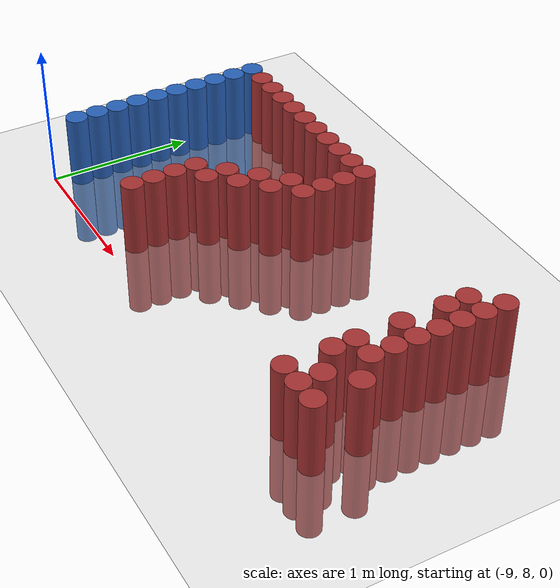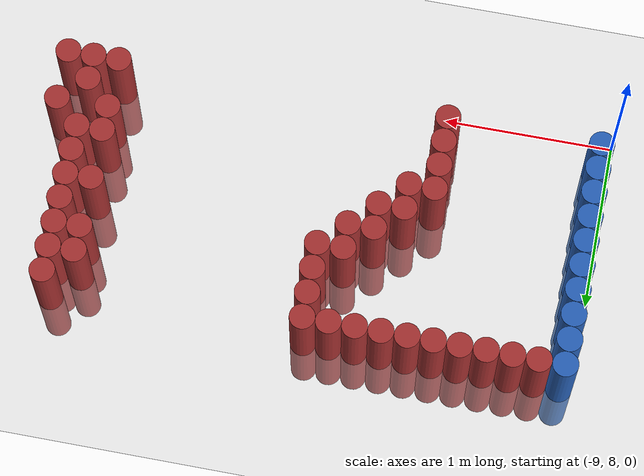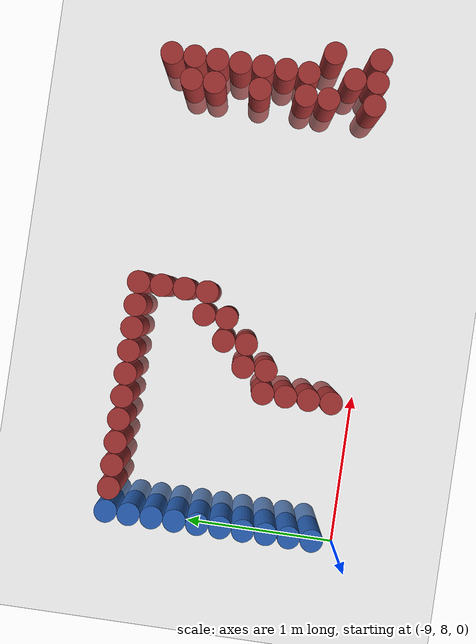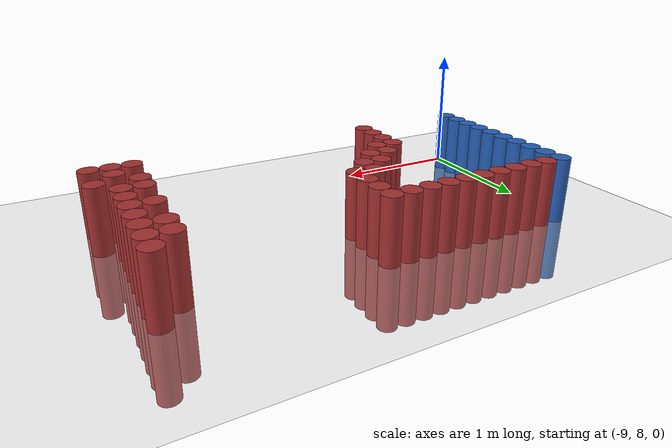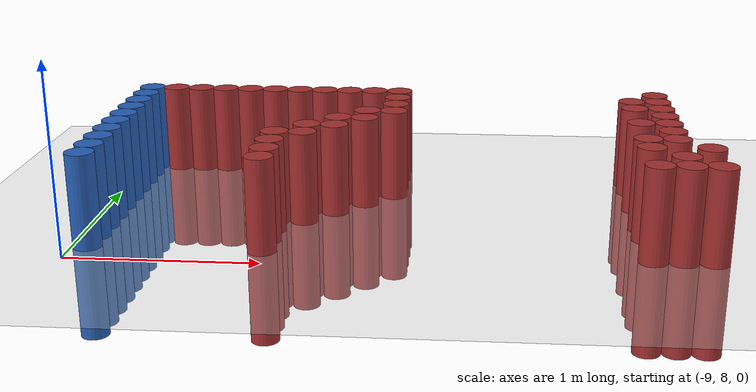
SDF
<sdf version="1.6">
 <world name="default">
  <model name="ground_plane">
   <static>1</static>
   <link name="link">
    <collision name="collision">
     <geometry><plane><normal>0 0 1</normal><size>100 100</size></plane></geometry>
     <surface><friction><ode><mu>100</mu><mu2>50</mu2></ode></friction></surface>
    </collision>
    <visual name="visual">
     <cast_shadows>0</cast_shadows>
     <geometry><plane><normal>0 0 1</normal><size>100 100</size></plane></geometry>
     <material>
      <script><uri>file://media/materials/scripts/gazebo.material</uri><name>Gazebo/Grey</name></script>
     </material>
    </visual>
   </link>
  </model>
  <model name="unit_cylinder_145">
   <static>1</static>
   <pose>-8.925000 8.175000 0.000000 0.000000 0.000000 0.000000</pose>
   <link name="link">
    <inertial>
     <mass>1</mass>
     <inertia><ixx>0.145833</ixx><ixy>0</ixy><ixz>0</ixz><iyy>0.145833</iyy><iyz>0</iyz><izz>0.125</izz></inertia>
    </inertial>
    <collision name="collision">
     <geometry><cylinder><radius>0.075000</radius><length>1</length></cylinder></geometry>
    </collision>
    <visual name="visual">
     <geometry><cylinder><radius>0.075000</radius><length>1</length></cylinder></geometry>
     <material>
      <ambient>0.152000 0.379000 0.720000 1</ambient>
      <diffuse>0.152000 0.379000 0.720000 1</diffuse>
     </material>
     <material>
      <script><name>Gazebo/Grey</name><uri>file://media/materials/scripts/gazebo.material</uri></script>
     </material>
    </visual>
   </link>
  </model>
  <model name="unit_cylinder_146">
   <static>1</static>
   <pose>-8.925000 8.325000 0.000000 0.000000 0.000000 0.000000</pose>
   <link name="link">
    <inertial>
     <mass>1</mass>
     <inertia><ixx>0.145833</ixx><ixy>0</ixy><ixz>0</ixz><iyy>0.145833</iyy><iyz>0</iyz><izz>0.125</izz></inertia>
    </inertial>
    <collision name="collision">
     <geometry><cylinder><radius>0.075000</radius><length>1</length></cylinder></geometry>
    </collision>
    <visual name="visual">
     <geometry><cylinder><radius>0.075000</radius><length>1</length></cylinder></geometry>
     <material>
      <ambient>0.152000 0.379000 0.720000 1</ambient>
      <diffuse>0.152000 0.379000 0.720000 1</diffuse>
     </material>
     <material>
      <script><name>Gazebo/Grey</name><uri>file://media/materials/scripts/gazebo.material</uri></script>
     </material>
    </visual>
   </link>
  </model>
  <model name="unit_cylinder_147">
   <static>1</static>
   <pose>-8.925000 8.475000 0.000000 0.000000 0.000000 0.000000</pose>
   <link name="link">
    <inertial>
     <mass>1</mass>
     <inertia><ixx>0.145833</ixx><ixy>0</ixy><ixz>0</ixz><iyy>0.145833</iyy><iyz>0</iyz><izz>0.125</izz></inertia>
    </inertial>
    <collision name="collision">
     <geometry><cylinder><radius>0.075000</radius><length>1</length></cylinder></geometry>
    </collision>
    <visual name="visual">
     <geometry><cylinder><radius>0.075000</radius><length>1</length></cylinder></geometry>
     <material>
      <ambient>0.152000 0.379000 0.720000 1</ambient>
      <diffuse>0.152000 0.379000 0.720000 1</diffuse>
     </material>
     <material>
      <script><name>Gazebo/Grey</name><uri>file://media/materials/scripts/gazebo.material</uri></script>
     </material>
    </visual>
   </link>
  </model>
  <model name="unit_cylinder_148">
   <static>1</static>
   <pose>-8.925000 8.625000 0.000000 0.000000 0.000000 0.000000</pose>
   <link name="link">
    <inertial>
     <mass>1</mass>
     <inertia><ixx>0.145833</ixx><ixy>0</ixy><ixz>0</ixz><iyy>0.145833</iyy><iyz>0</iyz><izz>0.125</izz></inertia>
    </inertial>
    <collision name="collision">
     <geometry><cylinder><radius>0.075000</radius><length>1</length></cylinder></geometry>
    </collision>
    <visual name="visual">
     <geometry><cylinder><radius>0.075000</radius><length>1</length></cylinder></geometry>
     <material>
      <ambient>0.152000 0.379000 0.720000 1</ambient>
      <diffuse>0.152000 0.379000 0.720000 1</diffuse>
     </material>
     <material>
      <script><name>Gazebo/Grey</name><uri>file://media/materials/scripts/gazebo.material</uri></script>
     </material>
    </visual>
   </link>
  </model>
  <model name="unit_cylinder_149">
   <static>1</static>
   <pose>-8.925000 8.775000 0.000000 0.000000 0.000000 0.000000</pose>
   <link name="link">
    <inertial>
     <mass>1</mass>
     <inertia><ixx>0.145833</ixx><ixy>0</ixy><ixz>0</ixz><iyy>0.145833</iyy><iyz>0</iyz><izz>0.125</izz></inertia>
    </inertial>
    <collision name="collision">
     <geometry><cylinder><radius>0.075000</radius><length>1</length></cylinder></geometry>
    </collision>
    <visual name="visual">
     <geometry><cylinder><radius>0.075000</radius><length>1</length></cylinder></geometry>
     <material>
      <ambient>0.152000 0.379000 0.720000 1</ambient>
      <diffuse>0.152000 0.379000 0.720000 1</diffuse>
     </material>
     <material>
      <script><name>Gazebo/Grey</name><uri>file://media/materials/scripts/gazebo.material</uri></script>
     </material>
    </visual>
   </link>
  </model>
  <model name="unit_cylinder_150">
   <static>1</static>
   <pose>-8.925000 8.925000 0.000000 0.000000 0.000000 0.000000</pose>
   <link name="link">
    <inertial>
     <mass>1</mass>
     <inertia><ixx>0.145833</ixx><ixy>0</ixy><ixz>0</ixz><iyy>0.145833</iyy><iyz>0</iyz><izz>0.125</izz></inertia>
    </inertial>
    <collision name="collision">
     <geometry><cylinder><radius>0.075000</radius><length>1</length></cylinder></geometry>
    </collision>
    <visual name="visual">
     <geometry><cylinder><radius>0.075000</radius><length>1</length></cylinder></geometry>
     <material>
      <ambient>0.152000 0.379000 0.720000 1</ambient>
      <diffuse>0.152000 0.379000 0.720000 1</diffuse>
     </material>
     <material>
      <script><name>Gazebo/Grey</name><uri>file://media/materials/scripts/gazebo.material</uri></script>
     </material>
    </visual>
   </link>
  </model>
  <model name="unit_cylinder_151">
   <static>1</static>
   <pose>-8.925000 9.075000 0.000000 0.000000 0.000000 0.000000</pose>
   <link name="link">
    <inertial>
     <mass>1</mass>
     <inertia><ixx>0.145833</ixx><ixy>0</ixy><ixz>0</ixz><iyy>0.145833</iyy><iyz>0</iyz><izz>0.125</izz></inertia>
    </inertial>
    <collision name="collision">
     <geometry><cylinder><radius>0.075000</radius><length>1</length></cylinder></geometry>
    </collision>
    <visual name="visual">
     <geometry><cylinder><radius>0.075000</radius><length>1</length></cylinder></geometry>
     <material>
      <ambient>0.152000 0.379000 0.720000 1</ambient>
      <diffuse>0.152000 0.379000 0.720000 1</diffuse>
     </material>
     <material>
      <script><name>Gazebo/Grey</name><uri>file://media/materials/scripts/gazebo.material</uri></script>
     </material>
    </visual>
   </link>
  </model>
  <model name="unit_cylinder_152">
   <static>1</static>
   <pose>-8.925000 9.225000 0.000000 0.000000 0.000000 0.000000</pose>
   <link name="link">
    <inertial>
     <mass>1</mass>
     <inertia><ixx>0.145833</ixx><ixy>0</ixy><ixz>0</ixz><iyy>0.145833</iyy><iyz>0</iyz><izz>0.125</izz></inertia>
    </inertial>
    <collision name="collision">
     <geometry><cylinder><radius>0.075000</radius><length>1</length></cylinder></geometry>
    </collision>
    <visual name="visual">
     <geometry><cylinder><radius>0.075000</radius><length>1</length></cylinder></geometry>
     <material>
      <ambient>0.152000 0.379000 0.720000 1</ambient>
      <diffuse>0.152000 0.379000 0.720000 1</diffuse>
     </material>
     <material>
      <script><name>Gazebo/Grey</name><uri>file://media/materials/scripts/gazebo.material</uri></script>
     </material>
    </visual>
   </link>
  </model>
  <model name="unit_cylinder_153">
   <static>1</static>
   <pose>-8.925000 9.375000 0.000000 0.000000 0.000000 0.000000</pose>
   <link name="link">
    <inertial>
     <mass>1</mass>
     <inertia><ixx>0.145833</ixx><ixy>0</ixy><ixz>0</ixz><iyy>0.145833</iyy><iyz>0</iyz><izz>0.125</izz></inertia>
    </inertial>
    <collision name="collision">
     <geometry><cylinder><radius>0.075000</radius><length>1</length></cylinder></geometry>
    </collision>
    <visual name="visual">
     <geometry><cylinder><radius>0.075000</radius><length>1</length></cylinder></geometry>
     <material>
      <ambient>0.152000 0.379000 0.720000 1</ambient>
      <diffuse>0.152000 0.379000 0.720000 1</diffuse>
     </material>
     <material>
      <script><name>Gazebo/Grey</name><uri>file://media/materials/scripts/gazebo.material</uri></script>
     </material>
    </visual>
   </link>
  </model>
  <model name="unit_cylinder_154">
   <static>1</static>
   <pose>-8.925000 9.525000 0.000000 0.000000 0.000000 0.000000</pose>
   <link name="link">
    <inertial>
     <mass>1</mass>
     <inertia><ixx>0.145833</ixx><ixy>0</ixy><ixz>0</ixz><iyy>0.145833</iyy><iyz>0</iyz><izz>0.125</izz></inertia>
    </inertial>
    <collision name="collision">
     <geometry><cylinder><radius>0.075000</radius><length>1</length></cylinder></geometry>
    </collision>
    <visual name="visual">
     <geometry><cylinder><radius>0.075000</radius><length>1</length></cylinder></geometry>
     <material>
      <ambient>0.152000 0.379000 0.720000 1</ambient>
      <diffuse>0.152000 0.379000 0.720000 1</diffuse>
     </material>
     <material>
      <script><name>Gazebo/Grey</name><uri>file://media/materials/scripts/gazebo.material</uri></script>
     </material>
    </visual>
   </link>
  </model>
  <model name="unit_cylinder_156">
   <static>1</static>
   <pose>-8.775000 9.525000 0.000000 0.000000 0.000000 0.000000</pose>
   <link name="link">
    <inertial>
     <mass>1</mass>
     <inertia><ixx>0.145833</ixx><ixy>0</ixy><ixz>0</ixz><iyy>0.145833</iyy><iyz>0</iyz><izz>0.125</izz></inertia>
    </inertial>
    <collision name="collision">
     <geometry><cylinder><radius>0.075000</radius><length>1</length></cylinder></geometry>
    </collision>
    <visual name="visual">
     <geometry><cylinder><radius>0.075000</radius><length>1</length></cylinder></geometry>
     <material>
      <ambient>0.648000 0.192000 0.192000 1</ambient>
      <diffuse>0.648000 0.192000 0.192000 1</diffuse>
     </material>
     <material>
      <script><name>Gazebo/Grey</name><uri>file://media/materials/scripts/gazebo.material</uri></script>
     </material>
    </visual>
   </link>
  </model>
  <model name="unit_cylinder_158">
   <static>1</static>
   <pose>-8.625000 9.525000 0.000000 0.000000 0.000000 0.000000</pose>
   <link name="link">
    <inertial>
     <mass>1</mass>
     <inertia><ixx>0.145833</ixx><ixy>0</ixy><ixz>0</ixz><iyy>0.145833</iyy><iyz>0</iyz><izz>0.125</izz></inertia>
    </inertial>
    <collision name="collision">
     <geometry><cylinder><radius>0.075000</radius><length>1</length></cylinder></geometry>
    </collision>
    <visual name="visual">
     <geometry><cylinder><radius>0.075000</radius><length>1</length></cylinder></geometry>
     <material>
      <ambient>0.648000 0.192000 0.192000 1</ambient>
      <diffuse>0.648000 0.192000 0.192000 1</diffuse>
     </material>
     <material>
      <script><name>Gazebo/Grey</name><uri>file://media/materials/scripts/gazebo.material</uri></script>
     </material>
    </visual>
   </link>
  </model>
  <model name="unit_cylinder_160">
   <static>1</static>
   <pose>-8.475000 9.525000 0.000000 0.000000 0.000000 0.000000</pose>
   <link name="link">
    <inertial>
     <mass>1</mass>
     <inertia><ixx>0.145833</ixx><ixy>0</ixy><ixz>0</ixz><iyy>0.145833</iyy><iyz>0</iyz><izz>0.125</izz></inertia>
    </inertial>
    <collision name="collision">
     <geometry><cylinder><radius>0.075000</radius><length>1</length></cylinder></geometry>
    </collision>
    <visual name="visual">
     <geometry><cylinder><radius>0.075000</radius><length>1</length></cylinder></geometry>
     <material>
      <ambient>0.648000 0.192000 0.192000 1</ambient>
      <diffuse>0.648000 0.192000 0.192000 1</diffuse>
     </material>
     <material>
      <script><name>Gazebo/Grey</name><uri>file://media/materials/scripts/gazebo.material</uri></script>
     </material>
    </visual>
   </link>
  </model>
  <model name="unit_cylinder_162">
   <static>1</static>
   <pose>-8.325000 9.525000 0.000000 0.000000 0.000000 0.000000</pose>
   <link name="link">
    <inertial>
     <mass>1</mass>
     <inertia><ixx>0.145833</ixx><ixy>0</ixy><ixz>0</ixz><iyy>0.145833</iyy><iyz>0</iyz><izz>0.125</izz></inertia>
    </inertial>
    <collision name="collision">
     <geometry><cylinder><radius>0.075000</radius><length>1</length></cylinder></geometry>
    </collision>
    <visual name="visual">
     <geometry><cylinder><radius>0.075000</radius><length>1</length></cylinder></geometry>
     <material>
      <ambient>0.648000 0.192000 0.192000 1</ambient>
      <diffuse>0.648000 0.192000 0.192000 1</diffuse>
     </material>
     <material>
      <script><name>Gazebo/Grey</name><uri>file://media/materials/scripts/gazebo.material</uri></script>
     </material>
    </visual>
   </link>
  </model>
  <model name="unit_cylinder_164">
   <static>1</static>
   <pose>-8.175000 9.525000 0.000000 0.000000 0.000000 0.000000</pose>
   <link name="link">
    <inertial>
     <mass>1</mass>
     <inertia><ixx>0.145833</ixx><ixy>0</ixy><ixz>0</ixz><iyy>0.145833</iyy><iyz>0</iyz><izz>0.125</izz></inertia>
    </inertial>
    <collision name="collision">
     <geometry><cylinder><radius>0.075000</radius><length>1</length></cylinder></geometry>
    </collision>
    <visual name="visual">
     <geometry><cylinder><radius>0.075000</radius><length>1</length></cylinder></geometry>
     <material>
      <ambient>0.648000 0.192000 0.192000 1</ambient>
      <diffuse>0.648000 0.192000 0.192000 1</diffuse>
     </material>
     <material>
      <script><name>Gazebo/Grey</name><uri>file://media/materials/scripts/gazebo.material</uri></script>
     </material>
    </visual>
   </link>
  </model>
  <model name="unit_cylinder_182">
   <static>1</static>
   <pose>-8.025000 8.175000 0.000000 0.000000 0.000000 0.000000</pose>
   <link name="link">
    <inertial>
     <mass>1</mass>
     <inertia><ixx>0.145833</ixx><ixy>0</ixy><ixz>0</ixz><iyy>0.145833</iyy><iyz>0</iyz><izz>0.125</izz></inertia>
    </inertial>
    <collision name="collision">
     <geometry><cylinder><radius>0.075000</radius><length>1</length></cylinder></geometry>
    </collision>
    <visual name="visual">
     <geometry><cylinder><radius>0.075000</radius><length>1</length></cylinder></geometry>
     <material>
      <ambient>0.648000 0.192000 0.192000 1</ambient>
      <diffuse>0.648000 0.192000 0.192000 1</diffuse>
     </material>
     <material>
      <script><name>Gazebo/Grey</name><uri>file://media/materials/scripts/gazebo.material</uri></script>
     </material>
    </visual>
   </link>
  </model>
  <model name="unit_cylinder_183">
   <static>1</static>
   <pose>-8.025000 8.325000 0.000000 0.000000 0.000000 0.000000</pose>
   <link name="link">
    <inertial>
     <mass>1</mass>
     <inertia><ixx>0.145833</ixx><ixy>0</ixy><ixz>0</ixz><iyy>0.145833</iyy><iyz>0</iyz><izz>0.125</izz></inertia>
    </inertial>
    <collision name="collision">
     <geometry><cylinder><radius>0.075000</radius><length>1</length></cylinder></geometry>
    </collision>
    <visual name="visual">
     <geometry><cylinder><radius>0.075000</radius><length>1</length></cylinder></geometry>
     <material>
      <ambient>0.648000 0.192000 0.192000 1</ambient>
      <diffuse>0.648000 0.192000 0.192000 1</diffuse>
     </material>
     <material>
      <script><name>Gazebo/Grey</name><uri>file://media/materials/scripts/gazebo.material</uri></script>
     </material>
    </visual>
   </link>
  </model>
  <model name="unit_cylinder_184">
   <static>1</static>
   <pose>-8.025000 8.475000 0.000000 0.000000 0.000000 0.000000</pose>
   <link name="link">
    <inertial>
     <mass>1</mass>
     <inertia><ixx>0.145833</ixx><ixy>0</ixy><ixz>0</ixz><iyy>0.145833</iyy><iyz>0</iyz><izz>0.125</izz></inertia>
    </inertial>
    <collision name="collision">
     <geometry><cylinder><radius>0.075000</radius><length>1</length></cylinder></geometry>
    </collision>
    <visual name="visual">
     <geometry><cylinder><radius>0.075000</radius><length>1</length></cylinder></geometry>
     <material>
      <ambient>0.648000 0.192000 0.192000 1</ambient>
      <diffuse>0.648000 0.192000 0.192000 1</diffuse>
     </material>
     <material>
      <script><name>Gazebo/Grey</name><uri>file://media/materials/scripts/gazebo.material</uri></script>
     </material>
    </visual>
   </link>
  </model>
  <model name="unit_cylinder_185">
   <static>1</static>
   <pose>-8.025000 8.625000 0.000000 0.000000 0.000000 0.000000</pose>
   <link name="link">
    <inertial>
     <mass>1</mass>
     <inertia><ixx>0.145833</ixx><ixy>0</ixy><ixz>0</ixz><iyy>0.145833</iyy><iyz>0</iyz><izz>0.125</izz></inertia>
    </inertial>
    <collision name="collision">
     <geometry><cylinder><radius>0.075000</radius><length>1</length></cylinder></geometry>
    </collision>
    <visual name="visual">
     <geometry><cylinder><radius>0.075000</radius><length>1</length></cylinder></geometry>
     <material>
      <ambient>0.648000 0.192000 0.192000 1</ambient>
      <diffuse>0.648000 0.192000 0.192000 1</diffuse>
     </material>
     <material>
      <script><name>Gazebo/Grey</name><uri>file://media/materials/scripts/gazebo.material</uri></script>
     </material>
    </visual>
   </link>
  </model>
  <model name="unit_cylinder_186">
   <static>1</static>
   <pose>-8.025000 9.525000 0.000000 0.000000 0.000000 0.000000</pose>
   <link name="link">
    <inertial>
     <mass>1</mass>
     <inertia><ixx>0.145833</ixx><ixy>0</ixy><ixz>0</ixz><iyy>0.145833</iyy><iyz>0</iyz><izz>0.125</izz></inertia>
    </inertial>
    <collision name="collision">
     <geometry><cylinder><radius>0.075000</radius><length>1</length></cylinder></geometry>
    </collision>
    <visual name="visual">
     <geometry><cylinder><radius>0.075000</radius><length>1</length></cylinder></geometry>
     <material>
      <ambient>0.648000 0.192000 0.192000 1</ambient>
      <diffuse>0.648000 0.192000 0.192000 1</diffuse>
     </material>
     <material>
      <script><name>Gazebo/Grey</name><uri>file://media/materials/scripts/gazebo.material</uri></script>
     </material>
    </visual>
   </link>
  </model>
  <model name="unit_cylinder_192">
   <static>1</static>
   <pose>-7.875000 8.625000 0.000000 0.000000 0.000000 0.000000</pose>
   <link name="link">
    <inertial>
     <mass>1</mass>
     <inertia><ixx>0.145833</ixx><ixy>0</ixy><ixz>0</ixz><iyy>0.145833</iyy><iyz>0</iyz><izz>0.125</izz></inertia>
    </inertial>
    <collision name="collision">
     <geometry><cylinder><radius>0.075000</radius><length>1</length></cylinder></geometry>
    </collision>
    <visual name="visual">
     <geometry><cylinder><radius>0.075000</radius><length>1</length></cylinder></geometry>
     <material>
      <ambient>0.648000 0.192000 0.192000 1</ambient>
      <diffuse>0.648000 0.192000 0.192000 1</diffuse>
     </material>
     <material>
      <script><name>Gazebo/Grey</name><uri>file://media/materials/scripts/gazebo.material</uri></script>
     </material>
    </visual>
   </link>
  </model>
  <model name="unit_cylinder_193">
   <static>1</static>
   <pose>-7.875000 8.775000 0.000000 0.000000 0.000000 0.000000</pose>
   <link name="link">
    <inertial>
     <mass>1</mass>
     <inertia><ixx>0.145833</ixx><ixy>0</ixy><ixz>0</ixz><iyy>0.145833</iyy><iyz>0</iyz><izz>0.125</izz></inertia>
    </inertial>
    <collision name="collision">
     <geometry><cylinder><radius>0.075000</radius><length>1</length></cylinder></geometry>
    </collision>
    <visual name="visual">
     <geometry><cylinder><radius>0.075000</radius><length>1</length></cylinder></geometry>
     <material>
      <ambient>0.648000 0.192000 0.192000 1</ambient>
      <diffuse>0.648000 0.192000 0.192000 1</diffuse>
     </material>
     <material>
      <script><name>Gazebo/Grey</name><uri>file://media/materials/scripts/gazebo.material</uri></script>
     </material>
    </visual>
   </link>
  </model>
  <model name="unit_cylinder_194">
   <static>1</static>
   <pose>-7.875000 9.525000 0.000000 0.000000 0.000000 0.000000</pose>
   <link name="link">
    <inertial>
     <mass>1</mass>
     <inertia><ixx>0.145833</ixx><ixy>0</ixy><ixz>0</ixz><iyy>0.145833</iyy><iyz>0</iyz><izz>0.125</izz></inertia>
    </inertial>
    <collision name="collision">
     <geometry><cylinder><radius>0.075000</radius><length>1</length></cylinder></geometry>
    </collision>
    <visual name="visual">
     <geometry><cylinder><radius>0.075000</radius><length>1</length></cylinder></geometry>
     <material>
      <ambient>0.648000 0.192000 0.192000 1</ambient>
      <diffuse>0.648000 0.192000 0.192000 1</diffuse>
     </material>
     <material>
      <script><name>Gazebo/Grey</name><uri>file://media/materials/scripts/gazebo.material</uri></script>
     </material>
    </visual>
   </link>
  </model>
  <model name="unit_cylinder_195">
   <static>1</static>
   <pose>-7.725000 8.775000 0.000000 0.000000 0.000000 0.000000</pose>
   <link name="link">
    <inertial>
     <mass>1</mass>
     <inertia><ixx>0.145833</ixx><ixy>0</ixy><ixz>0</ixz><iyy>0.145833</iyy><iyz>0</iyz><izz>0.125</izz></inertia>
    </inertial>
    <collision name="collision">
     <geometry><cylinder><radius>0.075000</radius><length>1</length></cylinder></geometry>
    </collision>
    <visual name="visual">
     <geometry><cylinder><radius>0.075000</radius><length>1</length></cylinder></geometry>
     <material>
      <ambient>0.648000 0.192000 0.192000 1</ambient>
      <diffuse>0.648000 0.192000 0.192000 1</diffuse>
     </material>
     <material>
      <script><name>Gazebo/Grey</name><uri>file://media/materials/scripts/gazebo.material</uri></script>
     </material>
    </visual>
   </link>
  </model>
  <model name="unit_cylinder_196">
   <static>1</static>
   <pose>-7.725000 8.925000 0.000000 0.000000 0.000000 0.000000</pose>
   <link name="link">
    <inertial>
     <mass>1</mass>
     <inertia><ixx>0.145833</ixx><ixy>0</ixy><ixz>0</ixz><iyy>0.145833</iyy><iyz>0</iyz><izz>0.125</izz></inertia>
    </inertial>
    <collision name="collision">
     <geometry><cylinder><radius>0.075000</radius><length>1</length></cylinder></geometry>
    </collision>
    <visual name="visual">
     <geometry><cylinder><radius>0.075000</radius><length>1</length></cylinder></geometry>
     <material>
      <ambient>0.648000 0.192000 0.192000 1</ambient>
      <diffuse>0.648000 0.192000 0.192000 1</diffuse>
     </material>
     <material>
      <script><name>Gazebo/Grey</name><uri>file://media/materials/scripts/gazebo.material</uri></script>
     </material>
    </visual>
   </link>
  </model>
  <model name="unit_cylinder_197">
   <static>1</static>
   <pose>-7.725000 9.525000 0.000000 0.000000 0.000000 0.000000</pose>
   <link name="link">
    <inertial>
     <mass>1</mass>
     <inertia><ixx>0.145833</ixx><ixy>0</ixy><ixz>0</ixz><iyy>0.145833</iyy><iyz>0</iyz><izz>0.125</izz></inertia>
    </inertial>
    <collision name="collision">
     <geometry><cylinder><radius>0.075000</radius><length>1</length></cylinder></geometry>
    </collision>
    <visual name="visual">
     <geometry><cylinder><radius>0.075000</radius><length>1</length></cylinder></geometry>
     <material>
      <ambient>0.648000 0.192000 0.192000 1</ambient>
      <diffuse>0.648000 0.192000 0.192000 1</diffuse>
     </material>
     <material>
      <script><name>Gazebo/Grey</name><uri>file://media/materials/scripts/gazebo.material</uri></script>
     </material>
    </visual>
   </link>
  </model>
  <model name="unit_cylinder_198">
   <static>1</static>
   <pose>-7.575000 8.925000 0.000000 0.000000 0.000000 0.000000</pose>
   <link name="link">
    <inertial>
     <mass>1</mass>
     <inertia><ixx>0.145833</ixx><ixy>0</ixy><ixz>0</ixz><iyy>0.145833</iyy><iyz>0</iyz><izz>0.125</izz></inertia>
    </inertial>
    <collision name="collision">
     <geometry><cylinder><radius>0.075000</radius><length>1</length></cylinder></geometry>
    </collision>
    <visual name="visual">
     <geometry><cylinder><radius>0.075000</radius><length>1</length></cylinder></geometry>
     <material>
      <ambient>0.648000 0.192000 0.192000 1</ambient>
      <diffuse>0.648000 0.192000 0.192000 1</diffuse>
     </material>
     <material>
      <script><name>Gazebo/Grey</name><uri>file://media/materials/scripts/gazebo.material</uri></script>
     </material>
    </visual>
   </link>
  </model>
  <model name="unit_cylinder_199">
   <static>1</static>
   <pose>-7.575000 9.075000 0.000000 0.000000 0.000000 0.000000</pose>
   <link name="link">
    <inertial>
     <mass>1</mass>
     <inertia><ixx>0.145833</ixx><ixy>0</ixy><ixz>0</ixz><iyy>0.145833</iyy><iyz>0</iyz><izz>0.125</izz></inertia>
    </inertial>
    <collision name="collision">
     <geometry><cylinder><radius>0.075000</radius><length>1</length></cylinder></geometry>
    </collision>
    <visual name="visual">
     <geometry><cylinder><radius>0.075000</radius><length>1</length></cylinder></geometry>
     <material>
      <ambient>0.648000 0.192000 0.192000 1</ambient>
      <diffuse>0.648000 0.192000 0.192000 1</diffuse>
     </material>
     <material>
      <script><name>Gazebo/Grey</name><uri>file://media/materials/scripts/gazebo.material</uri></script>
     </material>
    </visual>
   </link>
  </model>
  <model name="unit_cylinder_200">
   <static>1</static>
   <pose>-7.575000 9.525000 0.000000 0.000000 0.000000 0.000000</pose>
   <link name="link">
    <inertial>
     <mass>1</mass>
     <inertia><ixx>0.145833</ixx><ixy>0</ixy><ixz>0</ixz><iyy>0.145833</iyy><iyz>0</iyz><izz>0.125</izz></inertia>
    </inertial>
    <collision name="collision">
     <geometry><cylinder><radius>0.075000</radius><length>1</length></cylinder></geometry>
    </collision>
    <visual name="visual">
     <geometry><cylinder><radius>0.075000</radius><length>1</length></cylinder></geometry>
     <material>
      <ambient>0.648000 0.192000 0.192000 1</ambient>
      <diffuse>0.648000 0.192000 0.192000 1</diffuse>
     </material>
     <material>
      <script><name>Gazebo/Grey</name><uri>file://media/materials/scripts/gazebo.material</uri></script>
     </material>
    </visual>
   </link>
  </model>
  <model name="unit_cylinder_201">
   <static>1</static>
   <pose>-7.425000 9.075000 0.000000 0.000000 0.000000 0.000000</pose>
   <link name="link">
    <inertial>
     <mass>1</mass>
     <inertia><ixx>0.145833</ixx><ixy>0</ixy><ixz>0</ixz><iyy>0.145833</iyy><iyz>0</iyz><izz>0.125</izz></inertia>
    </inertial>
    <collision name="collision">
     <geometry><cylinder><radius>0.075000</radius><length>1</length></cylinder></geometry>
    </collision>
    <visual name="visual">
     <geometry><cylinder><radius>0.075000</radius><length>1</length></cylinder></geometry>
     <material>
      <ambient>0.648000 0.192000 0.192000 1</ambient>
      <diffuse>0.648000 0.192000 0.192000 1</diffuse>
     </material>
     <material>
      <script><name>Gazebo/Grey</name><uri>file://media/materials/scripts/gazebo.material</uri></script>
     </material>
    </visual>
   </link>
  </model>
  <model name="unit_cylinder_202">
   <static>1</static>
   <pose>-7.425000 9.225000 0.000000 0.000000 0.000000 0.000000</pose>
   <link name="link">
    <inertial>
     <mass>1</mass>
     <inertia><ixx>0.145833</ixx><ixy>0</ixy><ixz>0</ixz><iyy>0.145833</iyy><iyz>0</iyz><izz>0.125</izz></inertia>
    </inertial>
    <collision name="collision">
     <geometry><cylinder><radius>0.075000</radius><length>1</length></cylinder></geometry>
    </collision>
    <visual name="visual">
     <geometry><cylinder><radius>0.075000</radius><length>1</length></cylinder></geometry>
     <material>
      <ambient>0.648000 0.192000 0.192000 1</ambient>
      <diffuse>0.648000 0.192000 0.192000 1</diffuse>
     </material>
     <material>
      <script><name>Gazebo/Grey</name><uri>file://media/materials/scripts/gazebo.material</uri></script>
     </material>
    </visual>
   </link>
  </model>
  <model name="unit_cylinder_203">
   <static>1</static>
   <pose>-7.425000 9.375000 0.000000 0.000000 0.000000 0.000000</pose>
   <link name="link">
    <inertial>
     <mass>1</mass>
     <inertia><ixx>0.145833</ixx><ixy>0</ixy><ixz>0</ixz><iyy>0.145833</iyy><iyz>0</iyz><izz>0.125</izz></inertia>
    </inertial>
    <collision name="collision">
     <geometry><cylinder><radius>0.075000</radius><length>1</length></cylinder></geometry>
    </collision>
    <visual name="visual">
     <geometry><cylinder><radius>0.075000</radius><length>1</length></cylinder></geometry>
     <material>
      <ambient>0.648000 0.192000 0.192000 1</ambient>
      <diffuse>0.648000 0.192000 0.192000 1</diffuse>
     </material>
     <material>
      <script><name>Gazebo/Grey</name><uri>file://media/materials/scripts/gazebo.material</uri></script>
     </material>
    </visual>
   </link>
  </model>
  <model name="unit_cylinder_204">
   <static>1</static>
   <pose>-7.425000 9.525000 0.000000 0.000000 0.000000 0.000000</pose>
   <link name="link">
    <inertial>
     <mass>1</mass>
     <inertia><ixx>0.145833</ixx><ixy>0</ixy><ixz>0</ixz><iyy>0.145833</iyy><iyz>0</iyz><izz>0.125</izz></inertia>
    </inertial>
    <collision name="collision">
     <geometry><cylinder><radius>0.075000</radius><length>1</length></cylinder></geometry>
    </collision>
    <visual name="visual">
     <geometry><cylinder><radius>0.075000</radius><length>1</length></cylinder></geometry>
     <material>
      <ambient>0.648000 0.192000 0.192000 1</ambient>
      <diffuse>0.648000 0.192000 0.192000 1</diffuse>
     </material>
     <material>
      <script><name>Gazebo/Grey</name><uri>file://media/materials/scripts/gazebo.material</uri></script>
     </material>
    </visual>
   </link>
  </model>
  <model name="unit_cylinder_232">
   <static>1</static>
   <pose>-6.075000 8.175000 0.000000 0.000000 0.000000 0.000000</pose>
   <link name="link">
    <inertial>
     <mass>1</mass>
     <inertia><ixx>0.145833</ixx><ixy>0</ixy><ixz>0</ixz><iyy>0.145833</iyy><iyz>0</iyz><izz>0.125</izz></inertia>
    </inertial>
    <collision name="collision">
     <geometry><cylinder><radius>0.075000</radius><length>1</length></cylinder></geometry>
    </collision>
    <visual name="visual">
     <geometry><cylinder><radius>0.075000</radius><length>1</length></cylinder></geometry>
     <material>
      <ambient>0.648000 0.192000 0.192000 1</ambient>
      <diffuse>0.648000 0.192000 0.192000 1</diffuse>
     </material>
     <material>
      <script><name>Gazebo/Grey</name><uri>file://media/materials/scripts/gazebo.material</uri></script>
     </material>
    </visual>
   </link>
  </model>
  <model name="unit_cylinder_233">
   <static>1</static>
   <pose>-6.075000 8.475000 0.000000 0.000000 0.000000 0.000000</pose>
   <link name="link">
    <inertial>
     <mass>1</mass>
     <inertia><ixx>0.145833</ixx><ixy>0</ixy><ixz>0</ixz><iyy>0.145833</iyy><iyz>0</iyz><izz>0.125</izz></inertia>
    </inertial>
    <collision name="collision">
     <geometry><cylinder><radius>0.075000</radius><length>1</length></cylinder></geometry>
    </collision>
    <visual name="visual">
     <geometry><cylinder><radius>0.075000</radius><length>1</length></cylinder></geometry>
     <material>
      <ambient>0.648000 0.192000 0.192000 1</ambient>
      <diffuse>0.648000 0.192000 0.192000 1</diffuse>
     </material>
     <material>
      <script><name>Gazebo/Grey</name><uri>file://media/materials/scripts/gazebo.material</uri></script>
     </material>
    </visual>
   </link>
  </model>
  <model name="unit_cylinder_234">
   <static>1</static>
   <pose>-6.075000 8.625000 0.000000 0.000000 0.000000 0.000000</pose>
   <link name="link">
    <inertial>
     <mass>1</mass>
     <inertia><ixx>0.145833</ixx><ixy>0</ixy><ixz>0</ixz><iyy>0.145833</iyy><iyz>0</iyz><izz>0.125</izz></inertia>
    </inertial>
    <collision name="collision">
     <geometry><cylinder><radius>0.075000</radius><length>1</length></cylinder></geometry>
    </collision>
    <visual name="visual">
     <geometry><cylinder><radius>0.075000</radius><length>1</length></cylinder></geometry>
     <material>
      <ambient>0.648000 0.192000 0.192000 1</ambient>
      <diffuse>0.648000 0.192000 0.192000 1</diffuse>
     </material>
     <material>
      <script><name>Gazebo/Grey</name><uri>file://media/materials/scripts/gazebo.material</uri></script>
     </material>
    </visual>
   </link>
  </model>
  <model name="unit_cylinder_235">
   <static>1</static>
   <pose>-6.075000 8.925000 0.000000 0.000000 0.000000 0.000000</pose>
   <link name="link">
    <inertial>
     <mass>1</mass>
     <inertia><ixx>0.145833</ixx><ixy>0</ixy><ixz>0</ixz><iyy>0.145833</iyy><iyz>0</iyz><izz>0.125</izz></inertia>
    </inertial>
    <collision name="collision">
     <geometry><cylinder><radius>0.075000</radius><length>1</length></cylinder></geometry>
    </collision>
    <visual name="visual">
     <geometry><cylinder><radius>0.075000</radius><length>1</length></cylinder></geometry>
     <material>
      <ambient>0.648000 0.192000 0.192000 1</ambient>
      <diffuse>0.648000 0.192000 0.192000 1</diffuse>
     </material>
     <material>
      <script><name>Gazebo/Grey</name><uri>file://media/materials/scripts/gazebo.material</uri></script>
     </material>
    </visual>
   </link>
  </model>
  <model name="unit_cylinder_236">
   <static>1</static>
   <pose>-6.075000 9.225000 0.000000 0.000000 0.000000 0.000000</pose>
   <link name="link">
    <inertial>
     <mass>1</mass>
     <inertia><ixx>0.145833</ixx><ixy>0</ixy><ixz>0</ixz><iyy>0.145833</iyy><iyz>0</iyz><izz>0.125</izz></inertia>
    </inertial>
    <collision name="collision">
     <geometry><cylinder><radius>0.075000</radius><length>1</length></cylinder></geometry>
    </collision>
    <visual name="visual">
     <geometry><cylinder><radius>0.075000</radius><length>1</length></cylinder></geometry>
     <material>
      <ambient>0.648000 0.192000 0.192000 1</ambient>
      <diffuse>0.648000 0.192000 0.192000 1</diffuse>
     </material>
     <material>
      <script><name>Gazebo/Grey</name><uri>file://media/materials/scripts/gazebo.material</uri></script>
     </material>
    </visual>
   </link>
  </model>
  <model name="unit_cylinder_237">
   <static>1</static>
   <pose>-6.075000 9.375000 0.000000 0.000000 0.000000 0.000000</pose>
   <link name="link">
    <inertial>
     <mass>1</mass>
     <inertia><ixx>0.145833</ixx><ixy>0</ixy><ixz>0</ixz><iyy>0.145833</iyy><iyz>0</iyz><izz>0.125</izz></inertia>
    </inertial>
    <collision name="collision">
     <geometry><cylinder><radius>0.075000</radius><length>1</length></cylinder></geometry>
    </collision>
    <visual name="visual">
     <geometry><cylinder><radius>0.075000</radius><length>1</length></cylinder></geometry>
     <material>
      <ambient>0.648000 0.192000 0.192000 1</ambient>
      <diffuse>0.648000 0.192000 0.192000 1</diffuse>
     </material>
     <material>
      <script><name>Gazebo/Grey</name><uri>file://media/materials/scripts/gazebo.material</uri></script>
     </material>
    </visual>
   </link>
  </model>
  <model name="unit_cylinder_243">
   <static>1</static>
   <pose>-5.925000 8.175000 0.000000 0.000000 0.000000 0.000000</pose>
   <link name="link">
    <inertial>
     <mass>1</mass>
     <inertia><ixx>0.145833</ixx><ixy>0</ixy><ixz>0</ixz><iyy>0.145833</iyy><iyz>0</iyz><izz>0.125</izz></inertia>
    </inertial>
    <collision name="collision">
     <geometry><cylinder><radius>0.075000</radius><length>1</length></cylinder></geometry>
    </collision>
    <visual name="visual">
     <geometry><cylinder><radius>0.075000</radius><length>1</length></cylinder></geometry>
     <material>
      <ambient>0.648000 0.192000 0.192000 1</ambient>
      <diffuse>0.648000 0.192000 0.192000 1</diffuse>
     </material>
     <material>
      <script><name>Gazebo/Grey</name><uri>file://media/materials/scripts/gazebo.material</uri></script>
     </material>
    </visual>
   </link>
  </model>
  <model name="unit_cylinder_244">
   <static>1</static>
   <pose>-5.925000 8.325000 0.000000 0.000000 0.000000 0.000000</pose>
   <link name="link">
    <inertial>
     <mass>1</mass>
     <inertia><ixx>0.145833</ixx><ixy>0</ixy><ixz>0</ixz><iyy>0.145833</iyy><iyz>0</iyz><izz>0.125</izz></inertia>
    </inertial>
    <collision name="collision">
     <geometry><cylinder><radius>0.075000</radius><length>1</length></cylinder></geometry>
    </collision>
    <visual name="visual">
     <geometry><cylinder><radius>0.075000</radius><length>1</length></cylinder></geometry>
     <material>
      <ambient>0.648000 0.192000 0.192000 1</ambient>
      <diffuse>0.648000 0.192000 0.192000 1</diffuse>
     </material>
     <material>
      <script><name>Gazebo/Grey</name><uri>file://media/materials/scripts/gazebo.material</uri></script>
     </material>
    </visual>
   </link>
  </model>
  <model name="unit_cylinder_245">
   <static>1</static>
   <pose>-5.925000 8.625000 0.000000 0.000000 0.000000 0.000000</pose>
   <link name="link">
    <inertial>
     <mass>1</mass>
     <inertia><ixx>0.145833</ixx><ixy>0</ixy><ixz>0</ixz><iyy>0.145833</iyy><iyz>0</iyz><izz>0.125</izz></inertia>
    </inertial>
    <collision name="collision">
     <geometry><cylinder><radius>0.075000</radius><length>1</length></cylinder></geometry>
    </collision>
    <visual name="visual">
     <geometry><cylinder><radius>0.075000</radius><length>1</length></cylinder></geometry>
     <material>
      <ambient>0.648000 0.192000 0.192000 1</ambient>
      <diffuse>0.648000 0.192000 0.192000 1</diffuse>
     </material>
     <material>
      <script><name>Gazebo/Grey</name><uri>file://media/materials/scripts/gazebo.material</uri></script>
     </material>
    </visual>
   </link>
  </model>
  <model name="unit_cylinder_246">
   <static>1</static>
   <pose>-5.925000 8.775000 0.000000 0.000000 0.000000 0.000000</pose>
   <link name="link">
    <inertial>
     <mass>1</mass>
     <inertia><ixx>0.145833</ixx><ixy>0</ixy><ixz>0</ixz><iyy>0.145833</iyy><iyz>0</iyz><izz>0.125</izz></inertia>
    </inertial>
    <collision name="collision">
     <geometry><cylinder><radius>0.075000</radius><length>1</length></cylinder></geometry>
    </collision>
    <visual name="visual">
     <geometry><cylinder><radius>0.075000</radius><length>1</length></cylinder></geometry>
     <material>
      <ambient>0.648000 0.192000 0.192000 1</ambient>
      <diffuse>0.648000 0.192000 0.192000 1</diffuse>
     </material>
     <material>
      <script><name>Gazebo/Grey</name><uri>file://media/materials/scripts/gazebo.material</uri></script>
     </material>
    </visual>
   </link>
  </model>
  <model name="unit_cylinder_247">
   <static>1</static>
   <pose>-5.925000 8.925000 0.000000 0.000000 0.000000 0.000000</pose>
   <link name="link">
    <inertial>
     <mass>1</mass>
     <inertia><ixx>0.145833</ixx><ixy>0</ixy><ixz>0</ixz><iyy>0.145833</iyy><iyz>0</iyz><izz>0.125</izz></inertia>
    </inertial>
    <collision name="collision">
     <geometry><cylinder><radius>0.075000</radius><length>1</length></cylinder></geometry>
    </collision>
    <visual name="visual">
     <geometry><cylinder><radius>0.075000</radius><length>1</length></cylinder></geometry>
     <material>
      <ambient>0.648000 0.192000 0.192000 1</ambient>
      <diffuse>0.648000 0.192000 0.192000 1</diffuse>
     </material>
     <material>
      <script><name>Gazebo/Grey</name><uri>file://media/materials/scripts/gazebo.material</uri></script>
     </material>
    </visual>
   </link>
  </model>
  <model name="unit_cylinder_248">
   <static>1</static>
   <pose>-5.925000 9.075000 0.000000 0.000000 0.000000 0.000000</pose>
   <link name="link">
    <inertial>
     <mass>1</mass>
     <inertia><ixx>0.145833</ixx><ixy>0</ixy><ixz>0</ixz><iyy>0.145833</iyy><iyz>0</iyz><izz>0.125</izz></inertia>
    </inertial>
    <collision name="collision">
     <geometry><cylinder><radius>0.075000</radius><length>1</length></cylinder></geometry>
    </collision>
    <visual name="visual">
     <geometry><cylinder><radius>0.075000</radius><length>1</length></cylinder></geometry>
     <material>
      <ambient>0.648000 0.192000 0.192000 1</ambient>
      <diffuse>0.648000 0.192000 0.192000 1</diffuse>
     </material>
     <material>
      <script><name>Gazebo/Grey</name><uri>file://media/materials/scripts/gazebo.material</uri></script>
     </material>
    </visual>
   </link>
  </model>
  <model name="unit_cylinder_249">
   <static>1</static>
   <pose>-5.925000 9.225000 0.000000 0.000000 0.000000 0.000000</pose>
   <link name="link">
    <inertial>
     <mass>1</mass>
     <inertia><ixx>0.145833</ixx><ixy>0</ixy><ixz>0</ixz><iyy>0.145833</iyy><iyz>0</iyz><izz>0.125</izz></inertia>
    </inertial>
    <collision name="collision">
     <geometry><cylinder><radius>0.075000</radius><length>1</length></cylinder></geometry>
    </collision>
    <visual name="visual">
     <geometry><cylinder><radius>0.075000</radius><length>1</length></cylinder></geometry>
     <material>
      <ambient>0.648000 0.192000 0.192000 1</ambient>
      <diffuse>0.648000 0.192000 0.192000 1</diffuse>
     </material>
     <material>
      <script><name>Gazebo/Grey</name><uri>file://media/materials/scripts/gazebo.material</uri></script>
     </material>
    </visual>
   </link>
  </model>
  <model name="unit_cylinder_250">
   <static>1</static>
   <pose>-5.925000 9.375000 0.000000 0.000000 0.000000 0.000000</pose>
   <link name="link">
    <inertial>
     <mass>1</mass>
     <inertia><ixx>0.145833</ixx><ixy>0</ixy><ixz>0</ixz><iyy>0.145833</iyy><iyz>0</iyz><izz>0.125</izz></inertia>
    </inertial>
    <collision name="collision">
     <geometry><cylinder><radius>0.075000</radius><length>1</length></cylinder></geometry>
    </collision>
    <visual name="visual">
     <geometry><cylinder><radius>0.075000</radius><length>1</length></cylinder></geometry>
     <material>
      <ambient>0.648000 0.192000 0.192000 1</ambient>
      <diffuse>0.648000 0.192000 0.192000 1</diffuse>
     </material>
     <material>
      <script><name>Gazebo/Grey</name><uri>file://media/materials/scripts/gazebo.material</uri></script>
     </material>
    </visual>
   </link>
  </model>
  <model name="unit_cylinder_251">
   <static>1</static>
   <pose>-5.925000 9.525000 0.000000 0.000000 0.000000 0.000000</pose>
   <link name="link">
    <inertial>
     <mass>1</mass>
     <inertia><ixx>0.145833</ixx><ixy>0</ixy><ixz>0</ixz><iyy>0.145833</iyy><iyz>0</iyz><izz>0.125</izz></inertia>
    </inertial>
    <collision name="collision">
     <geometry><cylinder><radius>0.075000</radius><length>1</length></cylinder></geometry>
    </collision>
    <visual name="visual">
     <geometry><cylinder><radius>0.075000</radius><length>1</length></cylinder></geometry>
     <material>
      <ambient>0.648000 0.192000 0.192000 1</ambient>
      <diffuse>0.648000 0.192000 0.192000 1</diffuse>
     </material>
     <material>
      <script><name>Gazebo/Grey</name><uri>file://media/materials/scripts/gazebo.material</uri></script>
     </material>
    </visual>
   </link>
  </model>
  <model name="unit_cylinder_255">
   <static>1</static>
   <pose>-5.775000 8.175000 0.000000 0.000000 0.000000 0.000000</pose>
   <link name="link">
    <inertial>
     <mass>1</mass>
     <inertia><ixx>0.145833</ixx><ixy>0</ixy><ixz>0</ixz><iyy>0.145833</iyy><iyz>0</iyz><izz>0.125</izz></inertia>
    </inertial>
    <collision name="collision">
     <geometry><cylinder><radius>0.075000</radius><length>1</length></cylinder></geometry>
    </collision>
    <visual name="visual">
     <geometry><cylinder><radius>0.075000</radius><length>1</length></cylinder></geometry>
     <material>
      <ambient>0.648000 0.192000 0.192000 1</ambient>
      <diffuse>0.648000 0.192000 0.192000 1</diffuse>
     </material>
     <material>
      <script><name>Gazebo/Grey</name><uri>file://media/materials/scripts/gazebo.material</uri></script>
     </material>
    </visual>
   </link>
  </model>
  <model name="unit_cylinder_256">
   <static>1</static>
   <pose>-5.775000 8.475000 0.000000 0.000000 0.000000 0.000000</pose>
   <link name="link">
    <inertial>
     <mass>1</mass>
     <inertia><ixx>0.145833</ixx><ixy>0</ixy><ixz>0</ixz><iyy>0.145833</iyy><iyz>0</iyz><izz>0.125</izz></inertia>
    </inertial>
    <collision name="collision">
     <geometry><cylinder><radius>0.075000</radius><length>1</length></cylinder></geometry>
    </collision>
    <visual name="visual">
     <geometry><cylinder><radius>0.075000</radius><length>1</length></cylinder></geometry>
     <material>
      <ambient>0.648000 0.192000 0.192000 1</ambient>
      <diffuse>0.648000 0.192000 0.192000 1</diffuse>
     </material>
     <material>
      <script><name>Gazebo/Grey</name><uri>file://media/materials/scripts/gazebo.material</uri></script>
     </material>
    </visual>
   </link>
  </model>
 </world>
</sdf>
